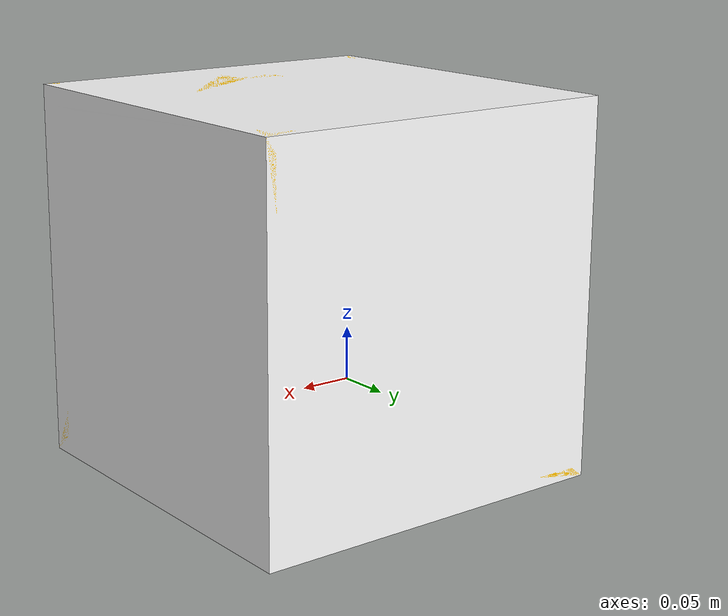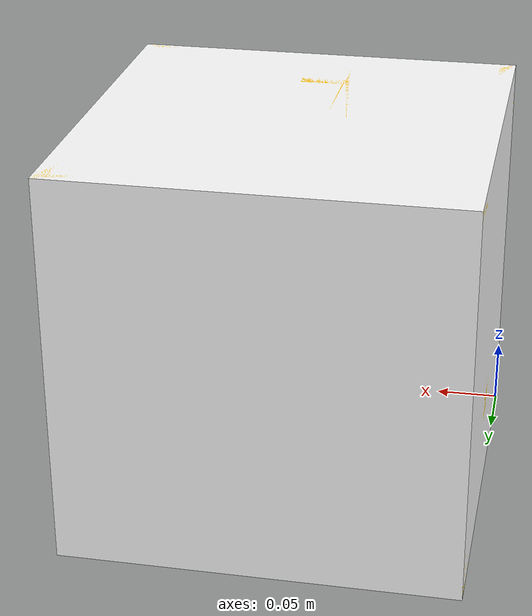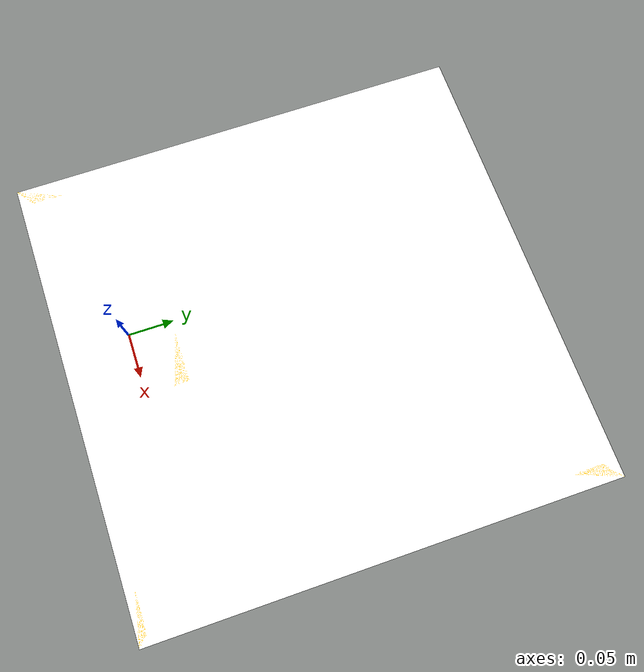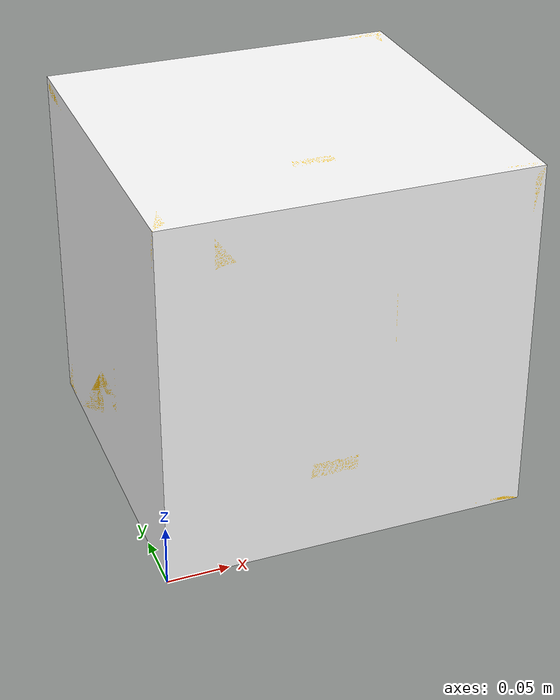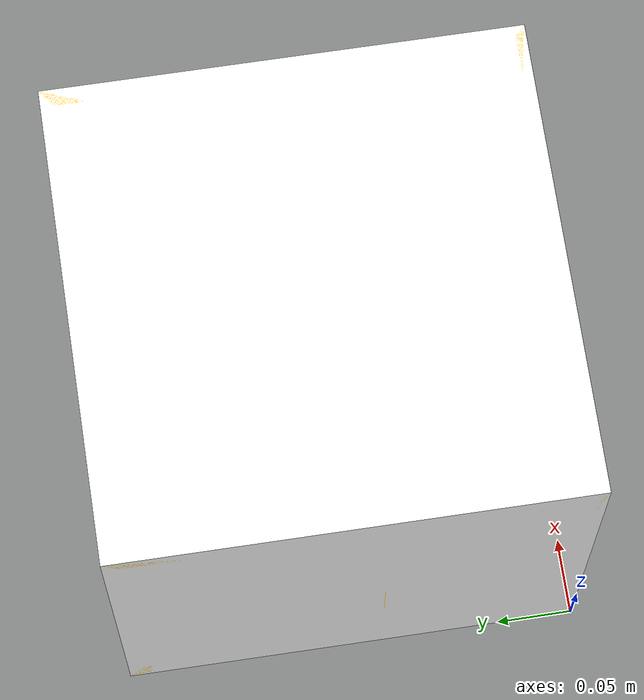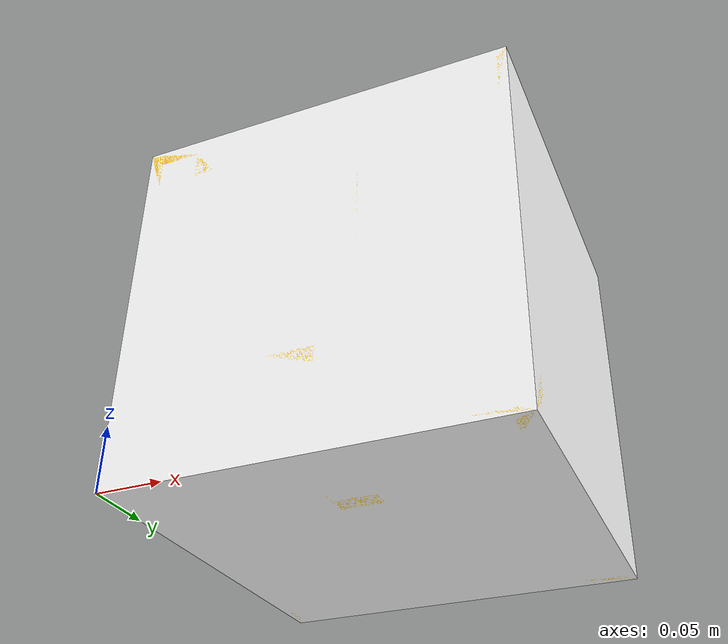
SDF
<?xml version="1.0" ?>
<sdf version="1.4">
  <model name="mysterious_box">
    <static>true</static>
    <link name="link">
      <visual name="visual">
        <cast_shadows>false</cast_shadows>
        <geometry>
          <mesh>
            <uri>model://custom_mario_box/meshes/model.dae</uri>
            <scale>0.2 0.2 0.2</scale>
          </mesh>
        </geometry>
      </visual>
    </link>
  </model>
</sdf>
